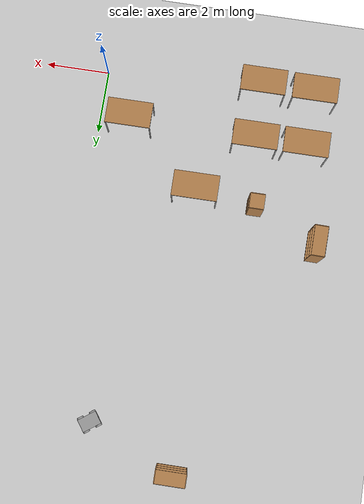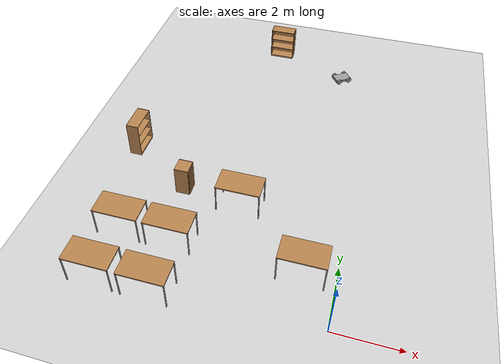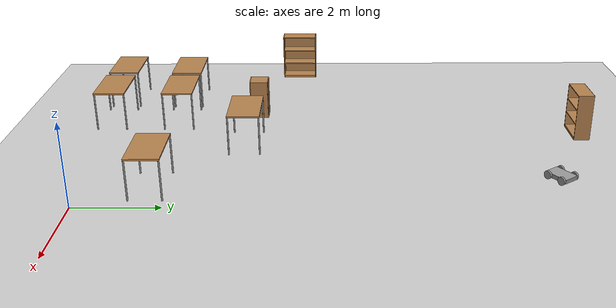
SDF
<sdf version="1.6">
 <world name="default">
  <model name="ground_plane">
   <static>1</static>
   <link name="link">
    <collision name="collision">
     <geometry><plane><normal>0 0 1</normal><size>100 100</size></plane></geometry>
     <surface><friction><ode><mu>100</mu><mu2>50</mu2></ode></friction></surface>
    </collision>
    <visual name="visual">
     <cast_shadows>0</cast_shadows>
     <geometry><plane><normal>0 0 1</normal><size>100 100</size></plane></geometry>
     <material>
      <script><uri>file://media/materials/scripts/gazebo.material</uri><name>Gazebo/Grey</name></script>
     </material>
    </visual>
   </link>
  </model>
  <model name="table_0_clone">
   <static>0</static>
   <link name="link">
    <collision name="surface">
     <pose>0 0 1 0 -0 0</pose>
     <geometry><box><size>1.5 0.8 0.03</size></box></geometry>
     <surface><friction><ode><mu>0.6</mu><mu2>0.6</mu2></ode></friction></surface>
    </collision>
    <visual name="visual1">
     <pose>0 0 1 0 -0 0</pose>
     <geometry><box><size>1.4 0.8 0.04</size></box></geometry>
     <material>
      <script><uri>file://media/materials/scripts/gazebo.material</uri><name>Gazebo/Wood</name></script>
     </material>
    </visual>
    <collision name="front_left_leg">
     <pose>0.68 0.38 0.5 0 -0 0</pose>
     <geometry><cylinder><radius>0.02</radius><length>1</length></cylinder></geometry>
    </collision>
    <visual name="front_left_leg">
     <pose>0.68 0.38 0.5 0 -0 0</pose>
     <geometry><cylinder><radius>0.02</radius><length>1</length></cylinder></geometry>
     <material>
      <script><uri>file://media/materials/scripts/gazebo.material</uri><name>Gazebo/Grey</name></script>
     </material>
    </visual>
    <collision name="front_right_leg">
     <pose>0.68 -0.38 0.5 0 -0 0</pose>
     <geometry><cylinder><radius>0.02</radius><length>1</length></cylinder></geometry>
    </collision>
    <visual name="front_right_leg">
     <pose>0.68 -0.38 0.5 0 -0 0</pose>
     <geometry><cylinder><radius>0.02</radius><length>1</length></cylinder></geometry>
     <material>
      <script><uri>file://media/materials/scripts/gazebo.material</uri><name>Gazebo/Grey</name></script>
     </material>
    </visual>
    <collision name="back_right_leg">
     <pose>-0.68 -0.38 0.5 0 -0 0</pose>
     <geometry><cylinder><radius>0.02</radius><length>1</length></cylinder></geometry>
    </collision>
    <visual name="back_right_leg">
     <pose>-0.68 -0.38 0.5 0 -0 0</pose>
     <geometry><cylinder><radius>0.02</radius><length>1</length></cylinder></geometry>
     <material>
      <script><uri>file://media/materials/scripts/gazebo.material</uri><name>Gazebo/Grey</name></script>
     </material>
    </visual>
    <collision name="back_left_leg">
     <pose>-0.68 0.38 0.5 0 -0 0</pose>
     <geometry><cylinder><radius>0.02</radius><length>1</length></cylinder></geometry>
    </collision>
    <visual name="back_left_leg">
     <pose>-0.68 0.38 0.5 0 -0 0</pose>
     <geometry><cylinder><radius>0.02</radius><length>1</length></cylinder></geometry>
     <material>
      <script><uri>file://media/materials/scripts/gazebo.material</uri><name>Gazebo/Grey</name></script>
     </material>
    </visual>
    <inertial>
     <inertia><ixx>1</ixx><ixy>0</ixy><ixz>0</ixz><iyy>1</iyy><iyz>0</iyz><izz>1</izz></inertia>
     <mass>1</mass>
    </inertial>
   </link>
   <pose>-6.50108 1.67338 -9e-06 0 -1e-06 0</pose>
  </model>
  <model name="table_0_clone_clone">
   <static>0</static>
   <link name="link">
    <collision name="surface">
     <pose>0 0 1 0 -0 0</pose>
     <geometry><box><size>1.5 0.8 0.03</size></box></geometry>
     <surface><friction><ode><mu>0.6</mu><mu2>0.6</mu2></ode></friction></surface>
    </collision>
    <visual name="visual1">
     <pose>0 0 1 0 -0 0</pose>
     <geometry><box><size>1.4 0.8 0.04</size></box></geometry>
     <material>
      <script><uri>file://media/materials/scripts/gazebo.material</uri><name>Gazebo/Wood</name></script>
     </material>
    </visual>
    <collision name="front_left_leg">
     <pose>0.68 0.38 0.5 0 -0 0</pose>
     <geometry><cylinder><radius>0.02</radius><length>1</length></cylinder></geometry>
    </collision>
    <visual name="front_left_leg">
     <pose>0.68 0.38 0.5 0 -0 0</pose>
     <geometry><cylinder><radius>0.02</radius><length>1</length></cylinder></geometry>
     <material>
      <script><uri>file://media/materials/scripts/gazebo.material</uri><name>Gazebo/Grey</name></script>
     </material>
    </visual>
    <collision name="front_right_leg">
     <pose>0.68 -0.38 0.5 0 -0 0</pose>
     <geometry><cylinder><radius>0.02</radius><length>1</length></cylinder></geometry>
    </collision>
    <visual name="front_right_leg">
     <pose>0.68 -0.38 0.5 0 -0 0</pose>
     <geometry><cylinder><radius>0.02</radius><length>1</length></cylinder></geometry>
     <material>
      <script><uri>file://media/materials/scripts/gazebo.material</uri><name>Gazebo/Grey</name></script>
     </material>
    </visual>
    <collision name="back_right_leg">
     <pose>-0.68 -0.38 0.5 0 -0 0</pose>
     <geometry><cylinder><radius>0.02</radius><length>1</length></cylinder></geometry>
    </collision>
    <visual name="back_right_leg">
     <pose>-0.68 -0.38 0.5 0 -0 0</pose>
     <geometry><cylinder><radius>0.02</radius><length>1</length></cylinder></geometry>
     <material>
      <script><uri>file://media/materials/scripts/gazebo.material</uri><name>Gazebo/Grey</name></script>
     </material>
    </visual>
    <collision name="back_left_leg">
     <pose>-0.68 0.38 0.5 0 -0 0</pose>
     <geometry><cylinder><radius>0.02</radius><length>1</length></cylinder></geometry>
    </collision>
    <visual name="back_left_leg">
     <pose>-0.68 0.38 0.5 0 -0 0</pose>
     <geometry><cylinder><radius>0.02</radius><length>1</length></cylinder></geometry>
     <material>
      <script><uri>file://media/materials/scripts/gazebo.material</uri><name>Gazebo/Grey</name></script>
     </material>
    </visual>
    <inertial>
     <inertia><ixx>1</ixx><ixy>0</ixy><ixz>0</ixz><iyy>1</iyy><iyz>0</iyz><izz>1</izz></inertia>
     <mass>1</mass>
    </inertial>
   </link>
   <pose>-4.93237 1.65925 -9e-06 0 -1e-06 0</pose>
  </model>
  <model name="table_0_clone_clone_0">
   <static>0</static>
   <link name="link">
    <collision name="surface">
     <pose>0 0 1 0 -0 0</pose>
     <geometry><box><size>1.5 0.8 0.03</size></box></geometry>
     <surface><friction><ode><mu>0.6</mu><mu2>0.6</mu2></ode></friction></surface>
    </collision>
    <visual name="visual1">
     <pose>0 0 1 0 -0 0</pose>
     <geometry><box><size>1.4 0.8 0.04</size></box></geometry>
     <material>
      <script><uri>file://media/materials/scripts/gazebo.material</uri><name>Gazebo/Wood</name></script>
     </material>
    </visual>
    <collision name="front_left_leg">
     <pose>0.68 0.38 0.5 0 -0 0</pose>
     <geometry><cylinder><radius>0.02</radius><length>1</length></cylinder></geometry>
    </collision>
    <visual name="front_left_leg">
     <pose>0.68 0.38 0.5 0 -0 0</pose>
     <geometry><cylinder><radius>0.02</radius><length>1</length></cylinder></geometry>
     <material>
      <script><uri>file://media/materials/scripts/gazebo.material</uri><name>Gazebo/Grey</name></script>
     </material>
    </visual>
    <collision name="front_right_leg">
     <pose>0.68 -0.38 0.5 0 -0 0</pose>
     <geometry><cylinder><radius>0.02</radius><length>1</length></cylinder></geometry>
    </collision>
    <visual name="front_right_leg">
     <pose>0.68 -0.38 0.5 0 -0 0</pose>
     <geometry><cylinder><radius>0.02</radius><length>1</length></cylinder></geometry>
     <material>
      <script><uri>file://media/materials/scripts/gazebo.material</uri><name>Gazebo/Grey</name></script>
     </material>
    </visual>
    <collision name="back_right_leg">
     <pose>-0.68 -0.38 0.5 0 -0 0</pose>
     <geometry><cylinder><radius>0.02</radius><length>1</length></cylinder></geometry>
    </collision>
    <visual name="back_right_leg">
     <pose>-0.68 -0.38 0.5 0 -0 0</pose>
     <geometry><cylinder><radius>0.02</radius><length>1</length></cylinder></geometry>
     <material>
      <script><uri>file://media/materials/scripts/gazebo.material</uri><name>Gazebo/Grey</name></script>
     </material>
    </visual>
    <collision name="back_left_leg">
     <pose>-0.68 0.38 0.5 0 -0 0</pose>
     <geometry><cylinder><radius>0.02</radius><length>1</length></cylinder></geometry>
    </collision>
    <visual name="back_left_leg">
     <pose>-0.68 0.38 0.5 0 -0 0</pose>
     <geometry><cylinder><radius>0.02</radius><length>1</length></cylinder></geometry>
     <material>
      <script><uri>file://media/materials/scripts/gazebo.material</uri><name>Gazebo/Grey</name></script>
     </material>
    </visual>
    <inertial>
     <inertia><ixx>1</ixx><ixy>0</ixy><ixz>0</ixz><iyy>1</iyy><iyz>0</iyz><izz>1</izz></inertia>
     <mass>1</mass>
    </inertial>
   </link>
   <pose>-6.55927 -0.076382 0 0 -0 0</pose>
  </model>
  <model name="table_0_clone_clone_clone_0">
   <static>0</static>
   <link name="link">
    <collision name="surface">
     <pose>0 0 1 0 -0 0</pose>
     <geometry><box><size>1.5 0.8 0.03</size></box></geometry>
     <surface><friction><ode><mu>0.6</mu><mu2>0.6</mu2></ode></friction></surface>
    </collision>
    <visual name="visual1">
     <pose>0 0 1 0 -0 0</pose>
     <geometry><box><size>1.4 0.8 0.04</size></box></geometry>
     <material>
      <script><uri>file://media/materials/scripts/gazebo.material</uri><name>Gazebo/Wood</name></script>
     </material>
    </visual>
    <collision name="front_left_leg">
     <pose>0.68 0.38 0.5 0 -0 0</pose>
     <geometry><cylinder><radius>0.02</radius><length>1</length></cylinder></geometry>
    </collision>
    <visual name="front_left_leg">
     <pose>0.68 0.38 0.5 0 -0 0</pose>
     <geometry><cylinder><radius>0.02</radius><length>1</length></cylinder></geometry>
     <material>
      <script><uri>file://media/materials/scripts/gazebo.material</uri><name>Gazebo/Grey</name></script>
     </material>
    </visual>
    <collision name="front_right_leg">
     <pose>0.68 -0.38 0.5 0 -0 0</pose>
     <geometry><cylinder><radius>0.02</radius><length>1</length></cylinder></geometry>
    </collision>
    <visual name="front_right_leg">
     <pose>0.68 -0.38 0.5 0 -0 0</pose>
     <geometry><cylinder><radius>0.02</radius><length>1</length></cylinder></geometry>
     <material>
      <script><uri>file://media/materials/scripts/gazebo.material</uri><name>Gazebo/Grey</name></script>
     </material>
    </visual>
    <collision name="back_right_leg">
     <pose>-0.68 -0.38 0.5 0 -0 0</pose>
     <geometry><cylinder><radius>0.02</radius><length>1</length></cylinder></geometry>
    </collision>
    <visual name="back_right_leg">
     <pose>-0.68 -0.38 0.5 0 -0 0</pose>
     <geometry><cylinder><radius>0.02</radius><length>1</length></cylinder></geometry>
     <material>
      <script><uri>file://media/materials/scripts/gazebo.material</uri><name>Gazebo/Grey</name></script>
     </material>
    </visual>
    <collision name="back_left_leg">
     <pose>-0.68 0.38 0.5 0 -0 0</pose>
     <geometry><cylinder><radius>0.02</radius><length>1</length></cylinder></geometry>
    </collision>
    <visual name="back_left_leg">
     <pose>-0.68 0.38 0.5 0 -0 0</pose>
     <geometry><cylinder><radius>0.02</radius><length>1</length></cylinder></geometry>
     <material>
      <script><uri>file://media/materials/scripts/gazebo.material</uri><name>Gazebo/Grey</name></script>
     </material>
    </visual>
    <inertial>
     <inertia><ixx>1</ixx><ixy>0</ixy><ixz>0</ixz><iyy>1</iyy><iyz>0</iyz><izz>1</izz></inertia>
     <mass>1</mass>
    </inertial>
   </link>
   <pose>-0.997502 1.5636 -9e-06 1e-06 -1e-06 0</pose>
  </model>
  <model name="cabinet_0">
   <static>1</static>
   <link name="cabinet_bottom_plate">
    <inertial>
     <pose>0 0 -1 0 -0 0</pose>
     <inertia><ixx>2.05</ixx><ixy>0</ixy><ixz>0</ixz><iyy>2.05</iyy><iyz>0</iyz><izz>2.05</izz></inertia>
     <mass>25</mass>
    </inertial>
    <collision name="cabinet_bottom_plate_geom">
     <pose>0 0 0.01 0 -0 0</pose>
     <geometry><box><size>0.45 0.45 0.02</size></box></geometry>
    </collision>
    <visual name="cabinet_bottom_plate_geom_visual">
     <pose>0 0 0.01 0 -0 0</pose>
     <geometry><box><size>0.45 0.45 0.02</size></box></geometry>
     <material>
      <script><uri>file://media/materials/scripts/gazebo.material</uri><name>Gazebo/Wood</name></script>
     </material>
    </visual>
    <collision name="cabinet_bottom_plate_geom_cabinet_back_plate">
     <pose>0.235 0 0.51 0 -0 0</pose>
     <geometry><box><size>0.02 0.45 1.02</size></box></geometry>
    </collision>
    <visual name="cabinet_bottom_plate_geom_cabinet_back_plate_visual">
     <pose>0.235 0 0.51 0 -0 0</pose>
     <geometry><box><size>0.02 0.45 1.02</size></box></geometry>
     <material>
      <script><uri>file://media/materials/scripts/gazebo.material</uri><name>Gazebo/Wood</name></script>
     </material>
    </visual>
    <collision name="cabinet_bottom_plate_geom_cabinet_left_plate">
     <pose>0 0.235 0.51 0 -0 0</pose>
     <geometry><box><size>0.45 0.02 1.02</size></box></geometry>
    </collision>
    <visual name="cabinet_bottom_plate_geom_cabinet_left_plate_visual">
     <pose>0 0.235 0.51 0 -0 0</pose>
     <geometry><box><size>0.45 0.02 1.02</size></box></geometry>
     <material>
      <script><uri>file://media/materials/scripts/gazebo.material</uri><name>Gazebo/Wood</name></script>
     </material>
    </visual>
    <collision name="cabinet_bottom_plate_geom_cabinet_middle_plate">
     <pose>0 0 0.51 0 -0 0</pose>
     <geometry><box><size>0.45 0.45 0.02</size></box></geometry>
    </collision>
    <visual name="cabinet_bottom_plate_geom_cabinet_middle_plate_visual">
     <pose>0 0 0.51 0 -0 0</pose>
     <geometry><box><size>0.45 0.45 0.02</size></box></geometry>
     <material>
      <script><uri>file://media/materials/scripts/gazebo.material</uri><name>Gazebo/Wood</name></script>
     </material>
    </visual>
    <collision name="cabinet_bottom_plate_geom_cabinet_right_plate">
     <pose>0 -0.235 0.51 0 -0 0</pose>
     <geometry><box><size>0.45 0.02 1.02</size></box></geometry>
    </collision>
    <visual name="cabinet_bottom_plate_geom_cabinet_right_plate_visual">
     <pose>0 -0.235 0.51 0 -0 0</pose>
     <geometry><box><size>0.45 0.02 1.02</size></box></geometry>
     <material>
      <script><uri>file://media/materials/scripts/gazebo.material</uri><name>Gazebo/Wood</name></script>
     </material>
    </visual>
    <collision name="cabinet_bottom_plate_geom_cabinet_top_plate">
     <pose>0 0 1.01 0 -0 0</pose>
     <geometry><box><size>0.45 0.45 0.02</size></box></geometry>
    </collision>
    <visual name="cabinet_bottom_plate_geom_cabinet_top_plate_visual">
     <pose>0 0 1.01 0 -0 0</pose>
     <geometry><box><size>0.45 0.45 0.02</size></box></geometry>
     <material>
      <script><uri>file://media/materials/scripts/gazebo.material</uri><name>Gazebo/Wood</name></script>
     </material>
    </visual>
   </link>
   <pose>-5.25669 3.72206 0 0 -0 0</pose>
  </model>
  <model name="table_0_clone_clone_clone">
   <static>0</static>
   <link name="link">
    <collision name="surface">
     <pose>0 0 1 0 -0 0</pose>
     <geometry><box><size>1.5 0.8 0.03</size></box></geometry>
     <surface><friction><ode><mu>0.6</mu><mu2>0.6</mu2></ode></friction></surface>
    </collision>
    <visual name="visual1">
     <pose>0 0 1 0 -0 0</pose>
     <geometry><box><size>1.4 0.8 0.04</size></box></geometry>
     <material>
      <script><uri>file://media/materials/scripts/gazebo.material</uri><name>Gazebo/Wood</name></script>
     </material>
    </visual>
    <collision name="front_left_leg">
     <pose>0.68 0.38 0.5 0 -0 0</pose>
     <geometry><cylinder><radius>0.02</radius><length>1</length></cylinder></geometry>
    </collision>
    <visual name="front_left_leg">
     <pose>0.68 0.38 0.5 0 -0 0</pose>
     <geometry><cylinder><radius>0.02</radius><length>1</length></cylinder></geometry>
     <material>
      <script><uri>file://media/materials/scripts/gazebo.material</uri><name>Gazebo/Grey</name></script>
     </material>
    </visual>
    <collision name="front_right_leg">
     <pose>0.68 -0.38 0.5 0 -0 0</pose>
     <geometry><cylinder><radius>0.02</radius><length>1</length></cylinder></geometry>
    </collision>
    <visual name="front_right_leg">
     <pose>0.68 -0.38 0.5 0 -0 0</pose>
     <geometry><cylinder><radius>0.02</radius><length>1</length></cylinder></geometry>
     <material>
      <script><uri>file://media/materials/scripts/gazebo.material</uri><name>Gazebo/Grey</name></script>
     </material>
    </visual>
    <collision name="back_right_leg">
     <pose>-0.68 -0.38 0.5 0 -0 0</pose>
     <geometry><cylinder><radius>0.02</radius><length>1</length></cylinder></geometry>
    </collision>
    <visual name="back_right_leg">
     <pose>-0.68 -0.38 0.5 0 -0 0</pose>
     <geometry><cylinder><radius>0.02</radius><length>1</length></cylinder></geometry>
     <material>
      <script><uri>file://media/materials/scripts/gazebo.material</uri><name>Gazebo/Grey</name></script>
     </material>
    </visual>
    <collision name="back_left_leg">
     <pose>-0.68 0.38 0.5 0 -0 0</pose>
     <geometry><cylinder><radius>0.02</radius><length>1</length></cylinder></geometry>
    </collision>
    <visual name="back_left_leg">
     <pose>-0.68 0.38 0.5 0 -0 0</pose>
     <geometry><cylinder><radius>0.02</radius><length>1</length></cylinder></geometry>
     <material>
      <script><uri>file://media/materials/scripts/gazebo.material</uri><name>Gazebo/Grey</name></script>
     </material>
    </visual>
    <inertial>
     <inertia><ixx>1</ixx><ixy>0</ixy><ixz>0</ixz><iyy>1</iyy><iyz>0</iyz><izz>1</izz></inertia>
     <mass>1</mass>
    </inertial>
   </link>
   <pose>-4.94822 -0.09981 -9e-06 -1e-06 0 0</pose>
  </model>
  <model name="bookshelf">
   <static>1</static>
   <link name="link">
    <inertial><mass>1</mass></inertial>
    <collision name="back">
     <pose>0 0.005 0.6 0 -0 0</pose>
     <geometry><box><size>0.9 0.01 1.2</size></box></geometry>
    </collision>
    <visual name="visual1">
     <pose>0 0.005 0.6 0 -0 0</pose>
     <geometry><box><size>0.9 0.01 1.2</size></box></geometry>
     <material>
      <script><uri>file://media/materials/scripts/gazebo.material</uri><name>Gazebo/Wood</name></script>
     </material>
    </visual>
    <collision name="left_side">
     <pose>0.45 -0.195 0.6 0 -0 0</pose>
     <geometry><box><size>0.02 0.4 1.2</size></box></geometry>
    </collision>
    <visual name="visual2">
     <pose>0.45 -0.195 0.6 0 -0 0</pose>
     <geometry><box><size>0.02 0.4 1.2</size></box></geometry>
     <material>
      <script><uri>file://media/materials/scripts/gazebo.material</uri><name>Gazebo/Wood</name></script>
     </material>
    </visual>
    <collision name="right_side">
     <pose>-0.45 -0.195 0.6 0 -0 0</pose>
     <geometry><box><size>0.02 0.4 1.2</size></box></geometry>
    </collision>
    <visual name="visual3">
     <pose>-0.45 -0.195 0.6 0 -0 0</pose>
     <geometry><box><size>0.02 0.4 1.2</size></box></geometry>
     <material>
      <script><uri>file://media/materials/scripts/gazebo.material</uri><name>Gazebo/Wood</name></script>
     </material>
    </visual>
    <collision name="bottom">
     <pose>0 -0.195 0.03 0 -0 0</pose>
     <geometry><box><size>0.88 0.4 0.06</size></box></geometry>
    </collision>
    <visual name="visual4">
     <pose>0 -0.195 0.03 0 -0 0</pose>
     <geometry><box><size>0.88 0.4 0.06</size></box></geometry>
     <material>
      <script><uri>file://media/materials/scripts/gazebo.material</uri><name>Gazebo/Wood</name></script>
     </material>
    </visual>
    <collision name="top">
     <pose>0 -0.195 1.19 0 -0 0</pose>
     <geometry><box><size>0.88 0.4 0.02</size></box></geometry>
    </collision>
    <visual name="visual5">
     <pose>0 -0.195 1.19 0 -0 0</pose>
     <geometry><box><size>0.88 0.4 0.02</size></box></geometry>
     <material>
      <script><uri>file://media/materials/scripts/gazebo.material</uri><name>Gazebo/Wood</name></script>
     </material>
    </visual>
    <collision name="low_shelf">
     <pose>0 -0.195 0.43 0 -0 0</pose>
     <geometry><box><size>0.88 0.4 0.02</size></box></geometry>
    </collision>
    <visual name="visual6">
     <pose>0 -0.195 0.43 0 -0 0</pose>
     <geometry><box><size>0.88 0.4 0.02</size></box></geometry>
     <material>
      <script><uri>file://media/materials/scripts/gazebo.material</uri><name>Gazebo/Wood</name></script>
     </material>
    </visual>
    <collision name="high_shelf">
     <pose>0 -0.195 0.8 0 -0 0</pose>
     <geometry><box><size>0.88 0.4 0.02</size></box></geometry>
    </collision>
    <visual name="visual7">
     <pose>0 -0.195 0.8 0 -0 0</pose>
     <geometry><box><size>0.88 0.4 0.02</size></box></geometry>
     <material>
      <script><uri>file://media/materials/scripts/gazebo.material</uri><name>Gazebo/Wood</name></script>
     </material>
    </visual>
   </link>
   <pose>-7.35237 4.7713 0.471392 0 -0 1.55071</pose>
  </model>
  <model name="bookshelf_0">
   <static>1</static>
   <link name="link">
    <inertial><mass>1</mass></inertial>
    <collision name="back">
     <pose>0 0.005 0.6 0 -0 0</pose>
     <geometry><box><size>0.9 0.01 1.2</size></box></geometry>
    </collision>
    <visual name="visual1">
     <pose>0 0.005 0.6 0 -0 0</pose>
     <geometry><box><size>0.9 0.01 1.2</size></box></geometry>
     <material>
      <script><uri>file://media/materials/scripts/gazebo.material</uri><name>Gazebo/Wood</name></script>
     </material>
    </visual>
    <collision name="left_side">
     <pose>0.45 -0.195 0.6 0 -0 0</pose>
     <geometry><box><size>0.02 0.4 1.2</size></box></geometry>
    </collision>
    <visual name="visual2">
     <pose>0.45 -0.195 0.6 0 -0 0</pose>
     <geometry><box><size>0.02 0.4 1.2</size></box></geometry>
     <material>
      <script><uri>file://media/materials/scripts/gazebo.material</uri><name>Gazebo/Wood</name></script>
     </material>
    </visual>
    <collision name="right_side">
     <pose>-0.45 -0.195 0.6 0 -0 0</pose>
     <geometry><box><size>0.02 0.4 1.2</size></box></geometry>
    </collision>
    <visual name="visual3">
     <pose>-0.45 -0.195 0.6 0 -0 0</pose>
     <geometry><box><size>0.02 0.4 1.2</size></box></geometry>
     <material>
      <script><uri>file://media/materials/scripts/gazebo.material</uri><name>Gazebo/Wood</name></script>
     </material>
    </visual>
    <collision name="bottom">
     <pose>0 -0.195 0.03 0 -0 0</pose>
     <geometry><box><size>0.88 0.4 0.06</size></box></geometry>
    </collision>
    <visual name="visual4">
     <pose>0 -0.195 0.03 0 -0 0</pose>
     <geometry><box><size>0.88 0.4 0.06</size></box></geometry>
     <material>
      <script><uri>file://media/materials/scripts/gazebo.material</uri><name>Gazebo/Wood</name></script>
     </material>
    </visual>
    <collision name="top">
     <pose>0 -0.195 1.19 0 -0 0</pose>
     <geometry><box><size>0.88 0.4 0.02</size></box></geometry>
    </collision>
    <visual name="visual5">
     <pose>0 -0.195 1.19 0 -0 0</pose>
     <geometry><box><size>0.88 0.4 0.02</size></box></geometry>
     <material>
      <script><uri>file://media/materials/scripts/gazebo.material</uri><name>Gazebo/Wood</name></script>
     </material>
    </visual>
    <collision name="low_shelf">
     <pose>0 -0.195 0.43 0 -0 0</pose>
     <geometry><box><size>0.88 0.4 0.02</size></box></geometry>
    </collision>
    <visual name="visual6">
     <pose>0 -0.195 0.43 0 -0 0</pose>
     <geometry><box><size>0.88 0.4 0.02</size></box></geometry>
     <material>
      <script><uri>file://media/materials/scripts/gazebo.material</uri><name>Gazebo/Wood</name></script>
     </material>
    </visual>
    <collision name="high_shelf">
     <pose>0 -0.195 0.8 0 -0 0</pose>
     <geometry><box><size>0.88 0.4 0.02</size></box></geometry>
    </collision>
    <visual name="visual7">
     <pose>0 -0.195 0.8 0 -0 0</pose>
     <geometry><box><size>0.88 0.4 0.02</size></box></geometry>
     <material>
      <script><uri>file://media/materials/scripts/gazebo.material</uri><name>Gazebo/Wood</name></script>
     </material>
    </visual>
   </link>
   <pose>-3.90012 12.2645 0 0 -0 0</pose>
  </model>
  <model name="table_0_clone_clone_clone_0_clone_0">
   <static>0</static>
   <link name="link">
    <collision name="surface">
     <pose>0 0 1 0 -0 0</pose>
     <geometry><box><size>1.5 0.8 0.03</size></box></geometry>
     <surface><friction><ode><mu>0.6</mu><mu2>0.6</mu2></ode></friction></surface>
    </collision>
    <visual name="visual1">
     <pose>0 0 1 0 -0 0</pose>
     <geometry><box><size>1.4 0.8 0.04</size></box></geometry>
     <material>
      <script><uri>file://media/materials/scripts/gazebo.material</uri><name>Gazebo/Wood</name></script>
     </material>
    </visual>
    <collision name="front_left_leg">
     <pose>0.68 0.38 0.5 0 -0 0</pose>
     <geometry><cylinder><radius>0.02</radius><length>1</length></cylinder></geometry>
    </collision>
    <visual name="front_left_leg">
     <pose>0.68 0.38 0.5 0 -0 0</pose>
     <geometry><cylinder><radius>0.02</radius><length>1</length></cylinder></geometry>
     <material>
      <script><uri>file://media/materials/scripts/gazebo.material</uri><name>Gazebo/Grey</name></script>
     </material>
    </visual>
    <collision name="front_right_leg">
     <pose>0.68 -0.38 0.5 0 -0 0</pose>
     <geometry><cylinder><radius>0.02</radius><length>1</length></cylinder></geometry>
    </collision>
    <visual name="front_right_leg">
     <pose>0.68 -0.38 0.5 0 -0 0</pose>
     <geometry><cylinder><radius>0.02</radius><length>1</length></cylinder></geometry>
     <material>
      <script><uri>file://media/materials/scripts/gazebo.material</uri><name>Gazebo/Grey</name></script>
     </material>
    </visual>
    <collision name="back_right_leg">
     <pose>-0.68 -0.38 0.5 0 -0 0</pose>
     <geometry><cylinder><radius>0.02</radius><length>1</length></cylinder></geometry>
    </collision>
    <visual name="back_right_leg">
     <pose>-0.68 -0.38 0.5 0 -0 0</pose>
     <geometry><cylinder><radius>0.02</radius><length>1</length></cylinder></geometry>
     <material>
      <script><uri>file://media/materials/scripts/gazebo.material</uri><name>Gazebo/Grey</name></script>
     </material>
    </visual>
    <collision name="back_left_leg">
     <pose>-0.68 0.38 0.5 0 -0 0</pose>
     <geometry><cylinder><radius>0.02</radius><length>1</length></cylinder></geometry>
    </collision>
    <visual name="back_left_leg">
     <pose>-0.68 0.38 0.5 0 -0 0</pose>
     <geometry><cylinder><radius>0.02</radius><length>1</length></cylinder></geometry>
     <material>
      <script><uri>file://media/materials/scripts/gazebo.material</uri><name>Gazebo/Grey</name></script>
     </material>
    </visual>
    <inertial>
     <inertia><ixx>1</ixx><ixy>0</ixy><ixz>0</ixz><iyy>1</iyy><iyz>0</iyz><izz>1</izz></inertia>
     <mass>1</mass>
    </inertial>
   </link>
   <pose>-3.34796 3.52196 -2e-06 -1e-06 -0 0.001835</pose>
  </model>
  <model name="MyRobot_clone">
   <link name="link_6">
    <inertial>
     <mass>1</mass>
     <inertia>
      <ixx>0.166667</ixx>
      <ixy>0</ixy>
      <ixz>0</ixz>
      <iyy>0.166667</iyy>
      <iyz>0</iyz>
      <izz>0.166667</izz>
     </inertia>
    </inertial>
    <visual name="visual">
     <geometry><box><size>0.6 0.4 0.1</size></box></geometry>
     <material>
      <lighting>1</lighting>
      <script><uri>file://media/materials/scripts/gazebo.material</uri><name>Gazebo/Grey</name></script>
      <ambient>0.3 0.3 0.3 1</ambient>
      <diffuse>0.7 0.7 0.7 1</diffuse>
      <specular>0.01 0.01 0.01 1</specular>
      <emissive>0 0 0 1</emissive>
      <shader type="vertex"><normal_map>__default__</normal_map></shader>
     </material>
    </visual>
    <collision name="collision">
     <geometry><box><size>0.6 0.4 0.1</size></box></geometry>
     <surface>
      <friction>
       <ode><mu>1</mu><mu2>1</mu2><fdir1>0 0 0</fdir1><slip1>0</slip1><slip2>0</slip2></ode>
       <torsional>
        <coefficient>1</coefficient>
        <patch_radius>0</patch_radius>
        <surface_radius>0</surface_radius>
        <use_patch_radius>1</use_patch_radius>
        <ode><slip>0</slip></ode>
       </torsional>
      </friction>
      <bounce><restitution_coefficient>0</restitution_coefficient><threshold>1e+06</threshold></bounce>
      <contact>
       <collide_without_contact>0</collide_without_contact>
       <collide_without_contact_bitmask>1</collide_without_contact_bitmask>
       <collide_bitmask>1</collide_bitmask>
       <ode>
        <soft_cfm>0</soft_cfm>
        <soft_erp>0.2</soft_erp>
        <kp>1e+13</kp>
        <kd>1</kd>
        <max_vel>0.01</max_vel>
        <min_depth>0</min_depth>
       </ode>
       <bullet>
        <split_impulse>1</split_impulse>
        <split_impulse_penetration_threshold>-0.01</split_impulse_penetration_threshold>
        <soft_cfm>0</soft_cfm>
        <soft_erp>0.2</soft_erp>
        <kp>1e+13</kp>
        <kd>1</kd>
       </bullet>
      </contact>
     </surface>
    </collision>
   </link>
   <link name="link_8">
    <pose>-0.2 -0.22501 0 1.5707 -0 0</pose>
    <inertial>
     <mass>1</mass>
     <inertia><ixx>0.145833</ixx><ixy>0</ixy><ixz>0</ixz><iyy>0.145833</iyy><iyz>0</iyz><izz>0.125</izz></inertia>
    </inertial>
    <visual name="visual">
     <geometry><cylinder><radius>0.1</radius><length>0.05</length></cylinder></geometry>
     <material>
      <lighting>1</lighting>
      <script><uri>file://media/materials/scripts/gazebo.material</uri><name>Gazebo/Grey</name></script>
      <ambient>0.3 0.3 0.3 1</ambient>
      <diffuse>0.7 0.7 0.7 1</diffuse>
      <specular>0.01 0.01 0.01 1</specular>
      <emissive>0 0 0 1</emissive>
      <shader type="vertex"><normal_map>__default__</normal_map></shader>
     </material>
    </visual>
    <collision name="collision">
     <geometry><cylinder><radius>0.1</radius><length>0.05</length></cylinder></geometry>
     <surface>
      <friction>
       <ode><mu>1</mu><mu2>1</mu2><fdir1>0 0 0</fdir1><slip1>0</slip1><slip2>0</slip2></ode>
       <torsional>
        <coefficient>1</coefficient>
        <patch_radius>0</patch_radius>
        <surface_radius>0</surface_radius>
        <use_patch_radius>1</use_patch_radius>
        <ode><slip>0</slip></ode>
       </torsional>
      </friction>
      <bounce><restitution_coefficient>0</restitution_coefficient><threshold>1e+06</threshold></bounce>
      <contact>
       <collide_without_contact>0</collide_without_contact>
       <collide_without_contact_bitmask>1</collide_without_contact_bitmask>
       <collide_bitmask>1</collide_bitmask>
       <ode>
        <soft_cfm>0</soft_cfm>
        <soft_erp>0.2</soft_erp>
        <kp>1e+13</kp>
        <kd>1</kd>
        <max_vel>0.01</max_vel>
        <min_depth>0</min_depth>
       </ode>
       <bullet>
        <split_impulse>1</split_impulse>
        <split_impulse_penetration_threshold>-0.01</split_impulse_penetration_threshold>
        <soft_cfm>0</soft_cfm>
        <soft_erp>0.2</soft_erp>
        <kp>1e+13</kp>
        <kd>1</kd>
       </bullet>
      </contact>
     </surface>
    </collision>
   </link>
   <link name="link_8_clone">
    <pose>-0.2 0.22501 0 1.5707 -0 0</pose>
    <inertial>
     <mass>1</mass>
     <inertia><ixx>0.145833</ixx><ixy>0</ixy><ixz>0</ixz><iyy>0.145833</iyy><iyz>0</iyz><izz>0.125</izz></inertia>
    </inertial>
    <visual name="visual">
     <geometry><cylinder><radius>0.1</radius><length>0.05</length></cylinder></geometry>
     <material>
      <lighting>1</lighting>
      <script><uri>file://media/materials/scripts/gazebo.material</uri><name>Gazebo/Grey</name></script>
      <ambient>0.3 0.3 0.3 1</ambient>
      <diffuse>0.7 0.7 0.7 1</diffuse>
      <specular>0.01 0.01 0.01 1</specular>
      <emissive>0 0 0 1</emissive>
      <shader type="vertex"><normal_map>__default__</normal_map></shader>
     </material>
    </visual>
    <collision name="collision">
     <geometry><cylinder><radius>0.1</radius><length>0.05</length></cylinder></geometry>
     <surface>
      <friction>
       <ode><mu>1</mu><mu2>1</mu2><fdir1>0 0 0</fdir1><slip1>0</slip1><slip2>0</slip2></ode>
       <torsional>
        <coefficient>1</coefficient>
        <patch_radius>0</patch_radius>
        <surface_radius>0</surface_radius>
        <use_patch_radius>1</use_patch_radius>
        <ode><slip>0</slip></ode>
       </torsional>
      </friction>
      <bounce><restitution_coefficient>0</restitution_coefficient><threshold>1e+06</threshold></bounce>
      <contact>
       <collide_without_contact>0</collide_without_contact>
       <collide_without_contact_bitmask>1</collide_without_contact_bitmask>
       <collide_bitmask>1</collide_bitmask>
       <ode>
        <soft_cfm>0</soft_cfm>
        <soft_erp>0.2</soft_erp>
        <kp>1e+13</kp>
        <kd>1</kd>
        <max_vel>0.01</max_vel>
        <min_depth>0</min_depth>
       </ode>
       <bullet>
        <split_impulse>1</split_impulse>
        <split_impulse_penetration_threshold>-0.01</split_impulse_penetration_threshold>
        <soft_cfm>0</soft_cfm>
        <soft_erp>0.2</soft_erp>
        <kp>1e+13</kp>
        <kd>1</kd>
       </bullet>
      </contact>
     </surface>
    </collision>
   </link>
   <link name="link_8_clone_clone">
    <pose>0.2 -0.22501 0 1.5707 -0 0</pose>
    <inertial>
     <mass>1</mass>
     <inertia><ixx>0.145833</ixx><ixy>0</ixy><ixz>0</ixz><iyy>0.145833</iyy><iyz>0</iyz><izz>0.125</izz></inertia>
    </inertial>
    <visual name="visual">
     <geometry><cylinder><radius>0.1</radius><length>0.05</length></cylinder></geometry>
     <material>
      <lighting>1</lighting>
      <script><uri>file://media/materials/scripts/gazebo.material</uri><name>Gazebo/Grey</name></script>
      <ambient>0.3 0.3 0.3 1</ambient>
      <diffuse>0.7 0.7 0.7 1</diffuse>
      <specular>0.01 0.01 0.01 1</specular>
      <emissive>0 0 0 1</emissive>
      <shader type="vertex"><normal_map>__default__</normal_map></shader>
     </material>
    </visual>
    <collision name="collision">
     <geometry><cylinder><radius>0.1</radius><length>0.05</length></cylinder></geometry>
     <surface>
      <friction>
       <ode><mu>1</mu><mu2>1</mu2><fdir1>0 0 0</fdir1><slip1>0</slip1><slip2>0</slip2></ode>
       <torsional>
        <coefficient>1</coefficient>
        <patch_radius>0</patch_radius>
        <surface_radius>0</surface_radius>
        <use_patch_radius>1</use_patch_radius>
        <ode><slip>0</slip></ode>
       </torsional>
      </friction>
      <bounce><restitution_coefficient>0</restitution_coefficient><threshold>1e+06</threshold></bounce>
      <contact>
       <collide_without_contact>0</collide_without_contact>
       <collide_without_contact_bitmask>1</collide_without_contact_bitmask>
       <collide_bitmask>1</collide_bitmask>
       <ode>
        <soft_cfm>0</soft_cfm>
        <soft_erp>0.2</soft_erp>
        <kp>1e+13</kp>
        <kd>1</kd>
        <max_vel>0.01</max_vel>
        <min_depth>0</min_depth>
       </ode>
       <bullet>
        <split_impulse>1</split_impulse>
        <split_impulse_penetration_threshold>-0.01</split_impulse_penetration_threshold>
        <soft_cfm>0</soft_cfm>
        <soft_erp>0.2</soft_erp>
        <kp>1e+13</kp>
        <kd>1</kd>
       </bullet>
      </contact>
     </surface>
    </collision>
   </link>
   <link name="link_8_clone_clone_clone">
    <pose>0.2 0.22501 0 1.5707 -0 0</pose>
    <inertial>
     <mass>1</mass>
     <inertia><ixx>0.145833</ixx><ixy>0</ixy><ixz>0</ixz><iyy>0.145833</iyy><iyz>0</iyz><izz>0.125</izz></inertia>
    </inertial>
    <visual name="visual">
     <geometry><cylinder><radius>0.1</radius><length>0.05</length></cylinder></geometry>
     <material>
      <lighting>1</lighting>
      <script><uri>file://media/materials/scripts/gazebo.material</uri><name>Gazebo/Grey</name></script>
      <ambient>0.3 0.3 0.3 1</ambient>
      <diffuse>0.7 0.7 0.7 1</diffuse>
      <specular>0.01 0.01 0.01 1</specular>
      <emissive>0 0 0 1</emissive>
      <shader type="vertex"><normal_map>__default__</normal_map></shader>
     </material>
    </visual>
    <collision name="collision">
     <geometry><cylinder><radius>0.1</radius><length>0.05</length></cylinder></geometry>
     <surface>
      <friction>
       <ode><mu>1</mu><mu2>1</mu2><fdir1>0 0 0</fdir1><slip1>0</slip1><slip2>0</slip2></ode>
       <torsional>
        <coefficient>1</coefficient>
        <patch_radius>0</patch_radius>
        <surface_radius>0</surface_radius>
        <use_patch_radius>1</use_patch_radius>
        <ode><slip>0</slip></ode>
       </torsional>
      </friction>
      <bounce><restitution_coefficient>0</restitution_coefficient><threshold>1e+06</threshold></bounce>
      <contact>
       <collide_without_contact>0</collide_without_contact>
       <collide_without_contact_bitmask>1</collide_without_contact_bitmask>
       <collide_bitmask>1</collide_bitmask>
       <ode>
        <soft_cfm>0</soft_cfm>
        <soft_erp>0.2</soft_erp>
        <kp>1e+13</kp>
        <kd>1</kd>
        <max_vel>0.01</max_vel>
        <min_depth>0</min_depth>
       </ode>
       <bullet>
        <split_impulse>1</split_impulse>
        <split_impulse_penetration_threshold>-0.01</split_impulse_penetration_threshold>
        <soft_cfm>0</soft_cfm>
        <soft_erp>0.2</soft_erp>
        <kp>1e+13</kp>
        <kd>1</kd>
       </bullet>
      </contact>
     </surface>
    </collision>
   </link>
   <joint name="link_6_JOINT_1" type="revolute">
    <parent>link_6</parent>
    <child>link_8</child>
    <axis>
     <xyz>0 0 1</xyz>
     <use_parent_model_frame>0</use_parent_model_frame>
     <limit>
      <lower>-1.79769e+308</lower>
      <upper>1.79769e+308</upper>
      <effort>-1</effort>
      <velocity>-1</velocity>
     </limit>
     <dynamics>
      <spring_reference>0</spring_reference>
      <spring_stiffness>0</spring_stiffness>
      <damping>0</damping>
     </dynamics>
    </axis>
    <physics>
     <ode><limit><cfm>0</cfm><erp>0.2</erp></limit><suspension><cfm>0</cfm><erp>0.2</erp></suspension></ode>
    </physics>
   </joint>
   <joint name="link_6_JOINT_2" type="revolute">
    <parent>link_6</parent>
    <child>link_8_clone</child>
    <axis>
     <xyz>0 0 1</xyz>
     <use_parent_model_frame>0</use_parent_model_frame>
     <limit>
      <lower>-1.79769e+308</lower>
      <upper>1.79769e+308</upper>
      <effort>-1</effort>
      <velocity>-1</velocity>
     </limit>
     <dynamics>
      <spring_reference>0</spring_reference>
      <spring_stiffness>0</spring_stiffness>
      <damping>0</damping>
     </dynamics>
    </axis>
    <physics>
     <ode><limit><cfm>0</cfm><erp>0.2</erp></limit><suspension><cfm>0</cfm><erp>0.2</erp></suspension></ode>
    </physics>
   </joint>
   <joint name="link_6_JOINT_3" type="revolute">
    <parent>link_6</parent>
    <child>link_8_clone_clone</child>
    <axis>
     <xyz>0 0 1</xyz>
     <use_parent_model_frame>0</use_parent_model_frame>
     <limit>
      <lower>-1.79769e+308</lower>
      <upper>1.79769e+308</upper>
      <effort>-1</effort>
      <velocity>-1</velocity>
     </limit>
     <dynamics>
      <spring_reference>0</spring_reference>
      <spring_stiffness>0</spring_stiffness>
      <damping>0</damping>
     </dynamics>
    </axis>
    <physics>
     <ode><limit><cfm>0</cfm><erp>0.2</erp></limit><suspension><cfm>0</cfm><erp>0.2</erp></suspension></ode>
    </physics>
   </joint>
   <joint name="link_6_JOINT_4" type="revolute">
    <parent>link_6</parent>
    <child>link_8_clone_clone_clone</child>
    <axis>
     <xyz>0 0 1</xyz>
     <use_parent_model_frame>0</use_parent_model_frame>
     <limit>
      <lower>-1.79769e+308</lower>
      <upper>1.79769e+308</upper>
      <effort>-1</effort>
      <velocity>-1</velocity>
     </limit>
     <dynamics>
      <spring_reference>0</spring_reference>
      <spring_stiffness>0</spring_stiffness>
      <damping>0</damping>
     </dynamics>
    </axis>
    <physics>
     <ode><limit><cfm>0</cfm><erp>0.2</erp></limit><suspension><cfm>0</cfm><erp>0.2</erp></suspension></ode>
    </physics>
   </joint>
   <static>0</static>
   <pose>-1.25429 10.9648 0.100003 -3e-06 -0 -2.52182</pose>
  </model>
 </world>
</sdf>
